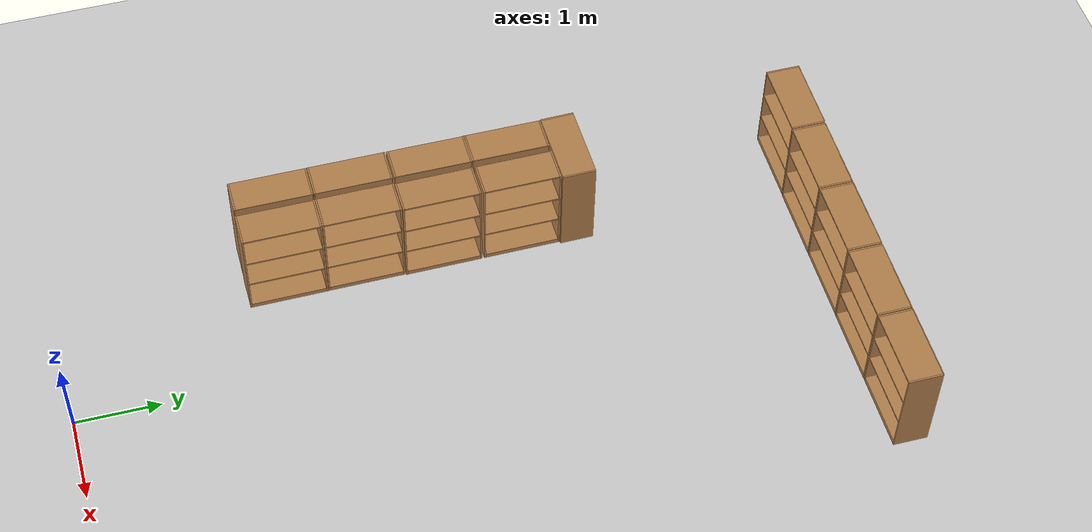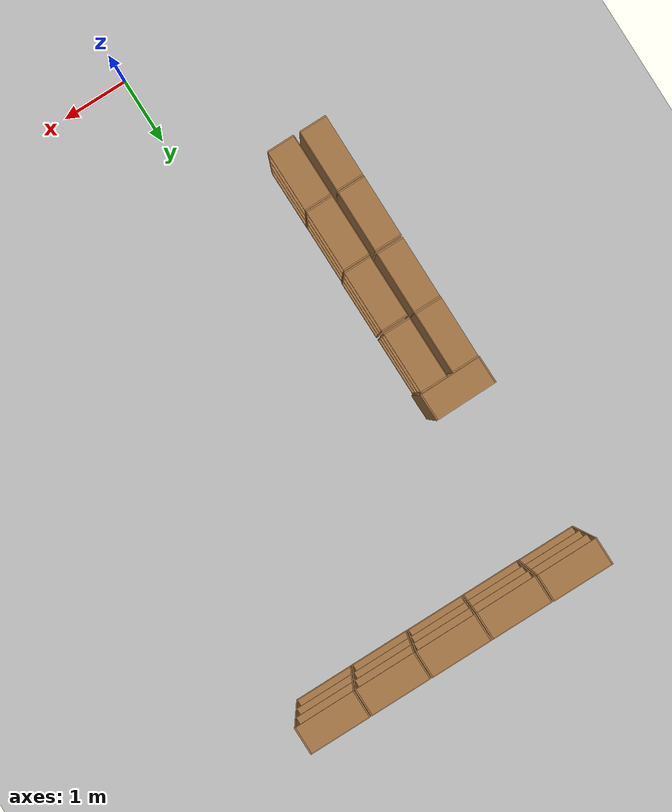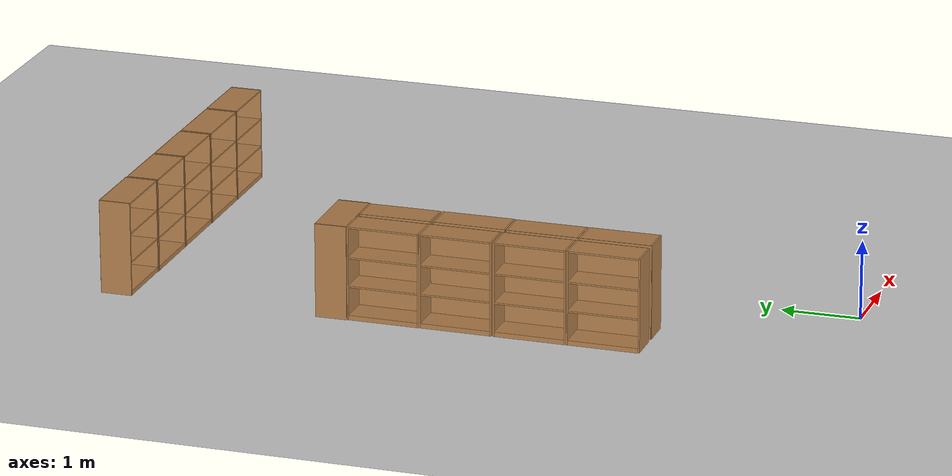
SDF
<sdf version="1.7">
 <world name="default">
  <model name="ground_plane">
   <static>1</static>
   <link name="link">
    <collision name="collision">
     <geometry><plane><normal>0 0 1</normal><size>100 100</size></plane></geometry>
     <surface><friction><ode><mu>100</mu><mu2>50</mu2></ode></friction></surface>
    </collision>
    <visual name="visual">
     <cast_shadows>0</cast_shadows>
     <geometry><plane><normal>0 0 1</normal><size>100 100</size></plane></geometry>
     <material>
      <script><uri>file://media/materials/scripts/gazebo.material</uri><name>Gazebo/Grey</name></script>
     </material>
    </visual>
   </link>
  </model>
  <model name="bookshelf_clone_clone_5">
   <static>1</static>
   <link name="link">
    <inertial><mass>1</mass></inertial>
    <collision name="back">
     <pose>0 0.005 0.6 0 -0 0</pose>
     <geometry><box><size>0.9 0.01 1.2</size></box></geometry>
    </collision>
    <visual name="visual1">
     <pose>0 0.005 0.6 0 -0 0</pose>
     <geometry><box><size>0.9 0.01 1.2</size></box></geometry>
     <material>
      <script><uri>file://media/materials/scripts/gazebo.material</uri><name>Gazebo/Wood</name></script>
     </material>
    </visual>
    <collision name="left_side">
     <pose>0.45 -0.195 0.6 0 -0 0</pose>
     <geometry><box><size>0.02 0.4 1.2</size></box></geometry>
    </collision>
    <visual name="visual2">
     <pose>0.45 -0.195 0.6 0 -0 0</pose>
     <geometry><box><size>0.02 0.4 1.2</size></box></geometry>
     <material>
      <script><uri>file://media/materials/scripts/gazebo.material</uri><name>Gazebo/Wood</name></script>
     </material>
    </visual>
    <collision name="right_side">
     <pose>-0.45 -0.195 0.6 0 -0 0</pose>
     <geometry><box><size>0.02 0.4 1.2</size></box></geometry>
    </collision>
    <visual name="visual3">
     <pose>-0.45 -0.195 0.6 0 -0 0</pose>
     <geometry><box><size>0.02 0.4 1.2</size></box></geometry>
     <material>
      <script><uri>file://media/materials/scripts/gazebo.material</uri><name>Gazebo/Wood</name></script>
     </material>
    </visual>
    <collision name="bottom">
     <pose>0 -0.195 0.03 0 -0 0</pose>
     <geometry><box><size>0.88 0.4 0.06</size></box></geometry>
    </collision>
    <visual name="visual4">
     <pose>0 -0.195 0.03 0 -0 0</pose>
     <geometry><box><size>0.88 0.4 0.06</size></box></geometry>
     <material>
      <script><uri>file://media/materials/scripts/gazebo.material</uri><name>Gazebo/Wood</name></script>
     </material>
    </visual>
    <collision name="top">
     <pose>0 -0.195 1.19 0 -0 0</pose>
     <geometry><box><size>0.88 0.4 0.02</size></box></geometry>
    </collision>
    <visual name="visual5">
     <pose>0 -0.195 1.19 0 -0 0</pose>
     <geometry><box><size>0.88 0.4 0.02</size></box></geometry>
     <material>
      <script><uri>file://media/materials/scripts/gazebo.material</uri><name>Gazebo/Wood</name></script>
     </material>
    </visual>
    <collision name="low_shelf">
     <pose>0 -0.195 0.43 0 -0 0</pose>
     <geometry><box><size>0.88 0.4 0.02</size></box></geometry>
    </collision>
    <visual name="visual6">
     <pose>0 -0.195 0.43 0 -0 0</pose>
     <geometry><box><size>0.88 0.4 0.02</size></box></geometry>
     <material>
      <script><uri>file://media/materials/scripts/gazebo.material</uri><name>Gazebo/Wood</name></script>
     </material>
    </visual>
    <collision name="high_shelf">
     <pose>0 -0.195 0.8 0 -0 0</pose>
     <geometry><box><size>0.88 0.4 0.02</size></box></geometry>
    </collision>
    <visual name="visual7">
     <pose>0 -0.195 0.8 0 -0 0</pose>
     <geometry><box><size>0.88 0.4 0.02</size></box></geometry>
     <material>
      <script><uri>file://media/materials/scripts/gazebo.material</uri><name>Gazebo/Wood</name></script>
     </material>
    </visual>
   </link>
   <pose>-1.53341 9.11755 0 0 -0 0</pose>
  </model>
  <model name="bookshelf_clone_clone_6">
   <static>1</static>
   <link name="link">
    <inertial><mass>1</mass></inertial>
    <collision name="back">
     <pose>0 0.005 0.6 0 -0 0</pose>
     <geometry><box><size>0.9 0.01 1.2</size></box></geometry>
    </collision>
    <visual name="visual1">
     <pose>0 0.005 0.6 0 -0 0</pose>
     <geometry><box><size>0.9 0.01 1.2</size></box></geometry>
     <material>
      <script><uri>file://media/materials/scripts/gazebo.material</uri><name>Gazebo/Wood</name></script>
     </material>
    </visual>
    <collision name="left_side">
     <pose>0.45 -0.195 0.6 0 -0 0</pose>
     <geometry><box><size>0.02 0.4 1.2</size></box></geometry>
    </collision>
    <visual name="visual2">
     <pose>0.45 -0.195 0.6 0 -0 0</pose>
     <geometry><box><size>0.02 0.4 1.2</size></box></geometry>
     <material>
      <script><uri>file://media/materials/scripts/gazebo.material</uri><name>Gazebo/Wood</name></script>
     </material>
    </visual>
    <collision name="right_side">
     <pose>-0.45 -0.195 0.6 0 -0 0</pose>
     <geometry><box><size>0.02 0.4 1.2</size></box></geometry>
    </collision>
    <visual name="visual3">
     <pose>-0.45 -0.195 0.6 0 -0 0</pose>
     <geometry><box><size>0.02 0.4 1.2</size></box></geometry>
     <material>
      <script><uri>file://media/materials/scripts/gazebo.material</uri><name>Gazebo/Wood</name></script>
     </material>
    </visual>
    <collision name="bottom">
     <pose>0 -0.195 0.03 0 -0 0</pose>
     <geometry><box><size>0.88 0.4 0.06</size></box></geometry>
    </collision>
    <visual name="visual4">
     <pose>0 -0.195 0.03 0 -0 0</pose>
     <geometry><box><size>0.88 0.4 0.06</size></box></geometry>
     <material>
      <script><uri>file://media/materials/scripts/gazebo.material</uri><name>Gazebo/Wood</name></script>
     </material>
    </visual>
    <collision name="top">
     <pose>0 -0.195 1.19 0 -0 0</pose>
     <geometry><box><size>0.88 0.4 0.02</size></box></geometry>
    </collision>
    <visual name="visual5">
     <pose>0 -0.195 1.19 0 -0 0</pose>
     <geometry><box><size>0.88 0.4 0.02</size></box></geometry>
     <material>
      <script><uri>file://media/materials/scripts/gazebo.material</uri><name>Gazebo/Wood</name></script>
     </material>
    </visual>
    <collision name="low_shelf">
     <pose>0 -0.195 0.43 0 -0 0</pose>
     <geometry><box><size>0.88 0.4 0.02</size></box></geometry>
    </collision>
    <visual name="visual6">
     <pose>0 -0.195 0.43 0 -0 0</pose>
     <geometry><box><size>0.88 0.4 0.02</size></box></geometry>
     <material>
      <script><uri>file://media/materials/scripts/gazebo.material</uri><name>Gazebo/Wood</name></script>
     </material>
    </visual>
    <collision name="high_shelf">
     <pose>0 -0.195 0.8 0 -0 0</pose>
     <geometry><box><size>0.88 0.4 0.02</size></box></geometry>
    </collision>
    <visual name="visual7">
     <pose>0 -0.195 0.8 0 -0 0</pose>
     <geometry><box><size>0.88 0.4 0.02</size></box></geometry>
     <material>
      <script><uri>file://media/materials/scripts/gazebo.material</uri><name>Gazebo/Wood</name></script>
     </material>
    </visual>
   </link>
   <pose>-0.606232 9.11229 0 0 -0 0</pose>
  </model>
  <model name="bookshelf_clone_clone_7">
   <static>1</static>
   <link name="link">
    <inertial><mass>1</mass></inertial>
    <collision name="back">
     <pose>0 0.005 0.6 0 -0 0</pose>
     <geometry><box><size>0.9 0.01 1.2</size></box></geometry>
    </collision>
    <visual name="visual1">
     <pose>0 0.005 0.6 0 -0 0</pose>
     <geometry><box><size>0.9 0.01 1.2</size></box></geometry>
     <material>
      <script><uri>file://media/materials/scripts/gazebo.material</uri><name>Gazebo/Wood</name></script>
     </material>
    </visual>
    <collision name="left_side">
     <pose>0.45 -0.195 0.6 0 -0 0</pose>
     <geometry><box><size>0.02 0.4 1.2</size></box></geometry>
    </collision>
    <visual name="visual2">
     <pose>0.45 -0.195 0.6 0 -0 0</pose>
     <geometry><box><size>0.02 0.4 1.2</size></box></geometry>
     <material>
      <script><uri>file://media/materials/scripts/gazebo.material</uri><name>Gazebo/Wood</name></script>
     </material>
    </visual>
    <collision name="right_side">
     <pose>-0.45 -0.195 0.6 0 -0 0</pose>
     <geometry><box><size>0.02 0.4 1.2</size></box></geometry>
    </collision>
    <visual name="visual3">
     <pose>-0.45 -0.195 0.6 0 -0 0</pose>
     <geometry><box><size>0.02 0.4 1.2</size></box></geometry>
     <material>
      <script><uri>file://media/materials/scripts/gazebo.material</uri><name>Gazebo/Wood</name></script>
     </material>
    </visual>
    <collision name="bottom">
     <pose>0 -0.195 0.03 0 -0 0</pose>
     <geometry><box><size>0.88 0.4 0.06</size></box></geometry>
    </collision>
    <visual name="visual4">
     <pose>0 -0.195 0.03 0 -0 0</pose>
     <geometry><box><size>0.88 0.4 0.06</size></box></geometry>
     <material>
      <script><uri>file://media/materials/scripts/gazebo.material</uri><name>Gazebo/Wood</name></script>
     </material>
    </visual>
    <collision name="top">
     <pose>0 -0.195 1.19 0 -0 0</pose>
     <geometry><box><size>0.88 0.4 0.02</size></box></geometry>
    </collision>
    <visual name="visual5">
     <pose>0 -0.195 1.19 0 -0 0</pose>
     <geometry><box><size>0.88 0.4 0.02</size></box></geometry>
     <material>
      <script><uri>file://media/materials/scripts/gazebo.material</uri><name>Gazebo/Wood</name></script>
     </material>
    </visual>
    <collision name="low_shelf">
     <pose>0 -0.195 0.43 0 -0 0</pose>
     <geometry><box><size>0.88 0.4 0.02</size></box></geometry>
    </collision>
    <visual name="visual6">
     <pose>0 -0.195 0.43 0 -0 0</pose>
     <geometry><box><size>0.88 0.4 0.02</size></box></geometry>
     <material>
      <script><uri>file://media/materials/scripts/gazebo.material</uri><name>Gazebo/Wood</name></script>
     </material>
    </visual>
    <collision name="high_shelf">
     <pose>0 -0.195 0.8 0 -0 0</pose>
     <geometry><box><size>0.88 0.4 0.02</size></box></geometry>
    </collision>
    <visual name="visual7">
     <pose>0 -0.195 0.8 0 -0 0</pose>
     <geometry><box><size>0.88 0.4 0.02</size></box></geometry>
     <material>
      <script><uri>file://media/materials/scripts/gazebo.material</uri><name>Gazebo/Wood</name></script>
     </material>
    </visual>
   </link>
   <pose>0.320661 9.11239 0 0 -0 0</pose>
  </model>
  <model name="bookshelf_clone_clone_8">
   <static>1</static>
   <link name="link">
    <inertial><mass>1</mass></inertial>
    <collision name="back">
     <pose>0 0.005 0.6 0 -0 0</pose>
     <geometry><box><size>0.9 0.01 1.2</size></box></geometry>
    </collision>
    <visual name="visual1">
     <pose>0 0.005 0.6 0 -0 0</pose>
     <geometry><box><size>0.9 0.01 1.2</size></box></geometry>
     <material>
      <script><uri>file://media/materials/scripts/gazebo.material</uri><name>Gazebo/Wood</name></script>
     </material>
    </visual>
    <collision name="left_side">
     <pose>0.45 -0.195 0.6 0 -0 0</pose>
     <geometry><box><size>0.02 0.4 1.2</size></box></geometry>
    </collision>
    <visual name="visual2">
     <pose>0.45 -0.195 0.6 0 -0 0</pose>
     <geometry><box><size>0.02 0.4 1.2</size></box></geometry>
     <material>
      <script><uri>file://media/materials/scripts/gazebo.material</uri><name>Gazebo/Wood</name></script>
     </material>
    </visual>
    <collision name="right_side">
     <pose>-0.45 -0.195 0.6 0 -0 0</pose>
     <geometry><box><size>0.02 0.4 1.2</size></box></geometry>
    </collision>
    <visual name="visual3">
     <pose>-0.45 -0.195 0.6 0 -0 0</pose>
     <geometry><box><size>0.02 0.4 1.2</size></box></geometry>
     <material>
      <script><uri>file://media/materials/scripts/gazebo.material</uri><name>Gazebo/Wood</name></script>
     </material>
    </visual>
    <collision name="bottom">
     <pose>0 -0.195 0.03 0 -0 0</pose>
     <geometry><box><size>0.88 0.4 0.06</size></box></geometry>
    </collision>
    <visual name="visual4">
     <pose>0 -0.195 0.03 0 -0 0</pose>
     <geometry><box><size>0.88 0.4 0.06</size></box></geometry>
     <material>
      <script><uri>file://media/materials/scripts/gazebo.material</uri><name>Gazebo/Wood</name></script>
     </material>
    </visual>
    <collision name="top">
     <pose>0 -0.195 1.19 0 -0 0</pose>
     <geometry><box><size>0.88 0.4 0.02</size></box></geometry>
    </collision>
    <visual name="visual5">
     <pose>0 -0.195 1.19 0 -0 0</pose>
     <geometry><box><size>0.88 0.4 0.02</size></box></geometry>
     <material>
      <script><uri>file://media/materials/scripts/gazebo.material</uri><name>Gazebo/Wood</name></script>
     </material>
    </visual>
    <collision name="low_shelf">
     <pose>0 -0.195 0.43 0 -0 0</pose>
     <geometry><box><size>0.88 0.4 0.02</size></box></geometry>
    </collision>
    <visual name="visual6">
     <pose>0 -0.195 0.43 0 -0 0</pose>
     <geometry><box><size>0.88 0.4 0.02</size></box></geometry>
     <material>
      <script><uri>file://media/materials/scripts/gazebo.material</uri><name>Gazebo/Wood</name></script>
     </material>
    </visual>
    <collision name="high_shelf">
     <pose>0 -0.195 0.8 0 -0 0</pose>
     <geometry><box><size>0.88 0.4 0.02</size></box></geometry>
    </collision>
    <visual name="visual7">
     <pose>0 -0.195 0.8 0 -0 0</pose>
     <geometry><box><size>0.88 0.4 0.02</size></box></geometry>
     <material>
      <script><uri>file://media/materials/scripts/gazebo.material</uri><name>Gazebo/Wood</name></script>
     </material>
    </visual>
   </link>
   <pose>1.24822 9.10984 0 0 -0 0</pose>
  </model>
  <model name="bookshelf_clone_clone_9">
   <static>1</static>
   <link name="link">
    <inertial><mass>1</mass></inertial>
    <collision name="back">
     <pose>0 0.005 0.6 0 -0 0</pose>
     <geometry><box><size>0.9 0.01 1.2</size></box></geometry>
    </collision>
    <visual name="visual1">
     <pose>0 0.005 0.6 0 -0 0</pose>
     <geometry><box><size>0.9 0.01 1.2</size></box></geometry>
     <material>
      <script><uri>file://media/materials/scripts/gazebo.material</uri><name>Gazebo/Wood</name></script>
     </material>
    </visual>
    <collision name="left_side">
     <pose>0.45 -0.195 0.6 0 -0 0</pose>
     <geometry><box><size>0.02 0.4 1.2</size></box></geometry>
    </collision>
    <visual name="visual2">
     <pose>0.45 -0.195 0.6 0 -0 0</pose>
     <geometry><box><size>0.02 0.4 1.2</size></box></geometry>
     <material>
      <script><uri>file://media/materials/scripts/gazebo.material</uri><name>Gazebo/Wood</name></script>
     </material>
    </visual>
    <collision name="right_side">
     <pose>-0.45 -0.195 0.6 0 -0 0</pose>
     <geometry><box><size>0.02 0.4 1.2</size></box></geometry>
    </collision>
    <visual name="visual3">
     <pose>-0.45 -0.195 0.6 0 -0 0</pose>
     <geometry><box><size>0.02 0.4 1.2</size></box></geometry>
     <material>
      <script><uri>file://media/materials/scripts/gazebo.material</uri><name>Gazebo/Wood</name></script>
     </material>
    </visual>
    <collision name="bottom">
     <pose>0 -0.195 0.03 0 -0 0</pose>
     <geometry><box><size>0.88 0.4 0.06</size></box></geometry>
    </collision>
    <visual name="visual4">
     <pose>0 -0.195 0.03 0 -0 0</pose>
     <geometry><box><size>0.88 0.4 0.06</size></box></geometry>
     <material>
      <script><uri>file://media/materials/scripts/gazebo.material</uri><name>Gazebo/Wood</name></script>
     </material>
    </visual>
    <collision name="top">
     <pose>0 -0.195 1.19 0 -0 0</pose>
     <geometry><box><size>0.88 0.4 0.02</size></box></geometry>
    </collision>
    <visual name="visual5">
     <pose>0 -0.195 1.19 0 -0 0</pose>
     <geometry><box><size>0.88 0.4 0.02</size></box></geometry>
     <material>
      <script><uri>file://media/materials/scripts/gazebo.material</uri><name>Gazebo/Wood</name></script>
     </material>
    </visual>
    <collision name="low_shelf">
     <pose>0 -0.195 0.43 0 -0 0</pose>
     <geometry><box><size>0.88 0.4 0.02</size></box></geometry>
    </collision>
    <visual name="visual6">
     <pose>0 -0.195 0.43 0 -0 0</pose>
     <geometry><box><size>0.88 0.4 0.02</size></box></geometry>
     <material>
      <script><uri>file://media/materials/scripts/gazebo.material</uri><name>Gazebo/Wood</name></script>
     </material>
    </visual>
    <collision name="high_shelf">
     <pose>0 -0.195 0.8 0 -0 0</pose>
     <geometry><box><size>0.88 0.4 0.02</size></box></geometry>
    </collision>
    <visual name="visual7">
     <pose>0 -0.195 0.8 0 -0 0</pose>
     <geometry><box><size>0.88 0.4 0.02</size></box></geometry>
     <material>
      <script><uri>file://media/materials/scripts/gazebo.material</uri><name>Gazebo/Wood</name></script>
     </material>
    </visual>
   </link>
   <pose>2.17586 9.11063 0 0 -0 0</pose>
  </model>
  <model name="bookshelf_clone_1_clone_clone_6_clone">
   <static>1</static>
   <link name="link">
    <inertial><mass>1</mass></inertial>
    <collision name="back">
     <pose>0 0.005 0.6 0 -0 0</pose>
     <geometry><box><size>0.9 0.01 1.2</size></box></geometry>
    </collision>
    <visual name="visual1">
     <pose>0 0.005 0.6 0 -0 0</pose>
     <geometry><box><size>0.9 0.01 1.2</size></box></geometry>
     <material>
      <script><uri>file://media/materials/scripts/gazebo.material</uri><name>Gazebo/Wood</name></script>
     </material>
    </visual>
    <collision name="left_side">
     <pose>0.45 -0.195 0.6 0 -0 0</pose>
     <geometry><box><size>0.02 0.4 1.2</size></box></geometry>
    </collision>
    <visual name="visual2">
     <pose>0.45 -0.195 0.6 0 -0 0</pose>
     <geometry><box><size>0.02 0.4 1.2</size></box></geometry>
     <material>
      <script><uri>file://media/materials/scripts/gazebo.material</uri><name>Gazebo/Wood</name></script>
     </material>
    </visual>
    <collision name="right_side">
     <pose>-0.45 -0.195 0.6 0 -0 0</pose>
     <geometry><box><size>0.02 0.4 1.2</size></box></geometry>
    </collision>
    <visual name="visual3">
     <pose>-0.45 -0.195 0.6 0 -0 0</pose>
     <geometry><box><size>0.02 0.4 1.2</size></box></geometry>
     <material>
      <script><uri>file://media/materials/scripts/gazebo.material</uri><name>Gazebo/Wood</name></script>
     </material>
    </visual>
    <collision name="bottom">
     <pose>0 -0.195 0.03 0 -0 0</pose>
     <geometry><box><size>0.88 0.4 0.06</size></box></geometry>
    </collision>
    <visual name="visual4">
     <pose>0 -0.195 0.03 0 -0 0</pose>
     <geometry><box><size>0.88 0.4 0.06</size></box></geometry>
     <material>
      <script><uri>file://media/materials/scripts/gazebo.material</uri><name>Gazebo/Wood</name></script>
     </material>
    </visual>
    <collision name="top">
     <pose>0 -0.195 1.19 0 -0 0</pose>
     <geometry><box><size>0.88 0.4 0.02</size></box></geometry>
    </collision>
    <visual name="visual5">
     <pose>0 -0.195 1.19 0 -0 0</pose>
     <geometry><box><size>0.88 0.4 0.02</size></box></geometry>
     <material>
      <script><uri>file://media/materials/scripts/gazebo.material</uri><name>Gazebo/Wood</name></script>
     </material>
    </visual>
    <collision name="low_shelf">
     <pose>0 -0.195 0.43 0 -0 0</pose>
     <geometry><box><size>0.88 0.4 0.02</size></box></geometry>
    </collision>
    <visual name="visual6">
     <pose>0 -0.195 0.43 0 -0 0</pose>
     <geometry><box><size>0.88 0.4 0.02</size></box></geometry>
     <material>
      <script><uri>file://media/materials/scripts/gazebo.material</uri><name>Gazebo/Wood</name></script>
     </material>
    </visual>
    <collision name="high_shelf">
     <pose>0 -0.195 0.8 0 -0 0</pose>
     <geometry><box><size>0.88 0.4 0.02</size></box></geometry>
    </collision>
    <visual name="visual7">
     <pose>0 -0.195 0.8 0 -0 0</pose>
     <geometry><box><size>0.88 0.4 0.02</size></box></geometry>
     <material>
      <script><uri>file://media/materials/scripts/gazebo.material</uri><name>Gazebo/Wood</name></script>
     </material>
    </visual>
   </link>
   <pose>-1.50903 5.94094 0 0 0 -3.12822</pose>
  </model>
  <model name="bookshelf_clone_2_clone_11">
   <static>1</static>
   <link name="link">
    <inertial><mass>1</mass></inertial>
    <collision name="back">
     <pose>0 0.005 0.6 0 -0 0</pose>
     <geometry><box><size>0.9 0.01 1.2</size></box></geometry>
    </collision>
    <visual name="visual1">
     <pose>0 0.005 0.6 0 -0 0</pose>
     <geometry><box><size>0.9 0.01 1.2</size></box></geometry>
     <material>
      <script><uri>file://media/materials/scripts/gazebo.material</uri><name>Gazebo/Wood</name></script>
     </material>
    </visual>
    <collision name="left_side">
     <pose>0.45 -0.195 0.6 0 -0 0</pose>
     <geometry><box><size>0.02 0.4 1.2</size></box></geometry>
    </collision>
    <visual name="visual2">
     <pose>0.45 -0.195 0.6 0 -0 0</pose>
     <geometry><box><size>0.02 0.4 1.2</size></box></geometry>
     <material>
      <script><uri>file://media/materials/scripts/gazebo.material</uri><name>Gazebo/Wood</name></script>
     </material>
    </visual>
    <collision name="right_side">
     <pose>-0.45 -0.195 0.6 0 -0 0</pose>
     <geometry><box><size>0.02 0.4 1.2</size></box></geometry>
    </collision>
    <visual name="visual3">
     <pose>-0.45 -0.195 0.6 0 -0 0</pose>
     <geometry><box><size>0.02 0.4 1.2</size></box></geometry>
     <material>
      <script><uri>file://media/materials/scripts/gazebo.material</uri><name>Gazebo/Wood</name></script>
     </material>
    </visual>
    <collision name="bottom">
     <pose>0 -0.195 0.03 0 -0 0</pose>
     <geometry><box><size>0.88 0.4 0.06</size></box></geometry>
    </collision>
    <visual name="visual4">
     <pose>0 -0.195 0.03 0 -0 0</pose>
     <geometry><box><size>0.88 0.4 0.06</size></box></geometry>
     <material>
      <script><uri>file://media/materials/scripts/gazebo.material</uri><name>Gazebo/Wood</name></script>
     </material>
    </visual>
    <collision name="top">
     <pose>0 -0.195 1.19 0 -0 0</pose>
     <geometry><box><size>0.88 0.4 0.02</size></box></geometry>
    </collision>
    <visual name="visual5">
     <pose>0 -0.195 1.19 0 -0 0</pose>
     <geometry><box><size>0.88 0.4 0.02</size></box></geometry>
     <material>
      <script><uri>file://media/materials/scripts/gazebo.material</uri><name>Gazebo/Wood</name></script>
     </material>
    </visual>
    <collision name="low_shelf">
     <pose>0 -0.195 0.43 0 -0 0</pose>
     <geometry><box><size>0.88 0.4 0.02</size></box></geometry>
    </collision>
    <visual name="visual6">
     <pose>0 -0.195 0.43 0 -0 0</pose>
     <geometry><box><size>0.88 0.4 0.02</size></box></geometry>
     <material>
      <script><uri>file://media/materials/scripts/gazebo.material</uri><name>Gazebo/Wood</name></script>
     </material>
    </visual>
    <collision name="high_shelf">
     <pose>0 -0.195 0.8 0 -0 0</pose>
     <geometry><box><size>0.88 0.4 0.02</size></box></geometry>
    </collision>
    <visual name="visual7">
     <pose>0 -0.195 0.8 0 -0 0</pose>
     <geometry><box><size>0.88 0.4 0.02</size></box></geometry>
     <material>
      <script><uri>file://media/materials/scripts/gazebo.material</uri><name>Gazebo/Wood</name></script>
     </material>
    </visual>
   </link>
   <pose>-1.55871 2.68408 0 0 0 -1.57136</pose>
  </model>
  <model name="bookshelf_clone_2_clone_12">
   <static>1</static>
   <link name="link">
    <inertial><mass>1</mass></inertial>
    <collision name="back">
     <pose>0 0.005 0.6 0 -0 0</pose>
     <geometry><box><size>0.9 0.01 1.2</size></box></geometry>
    </collision>
    <visual name="visual1">
     <pose>0 0.005 0.6 0 -0 0</pose>
     <geometry><box><size>0.9 0.01 1.2</size></box></geometry>
     <material>
      <script><uri>file://media/materials/scripts/gazebo.material</uri><name>Gazebo/Wood</name></script>
     </material>
    </visual>
    <collision name="left_side">
     <pose>0.45 -0.195 0.6 0 -0 0</pose>
     <geometry><box><size>0.02 0.4 1.2</size></box></geometry>
    </collision>
    <visual name="visual2">
     <pose>0.45 -0.195 0.6 0 -0 0</pose>
     <geometry><box><size>0.02 0.4 1.2</size></box></geometry>
     <material>
      <script><uri>file://media/materials/scripts/gazebo.material</uri><name>Gazebo/Wood</name></script>
     </material>
    </visual>
    <collision name="right_side">
     <pose>-0.45 -0.195 0.6 0 -0 0</pose>
     <geometry><box><size>0.02 0.4 1.2</size></box></geometry>
    </collision>
    <visual name="visual3">
     <pose>-0.45 -0.195 0.6 0 -0 0</pose>
     <geometry><box><size>0.02 0.4 1.2</size></box></geometry>
     <material>
      <script><uri>file://media/materials/scripts/gazebo.material</uri><name>Gazebo/Wood</name></script>
     </material>
    </visual>
    <collision name="bottom">
     <pose>0 -0.195 0.03 0 -0 0</pose>
     <geometry><box><size>0.88 0.4 0.06</size></box></geometry>
    </collision>
    <visual name="visual4">
     <pose>0 -0.195 0.03 0 -0 0</pose>
     <geometry><box><size>0.88 0.4 0.06</size></box></geometry>
     <material>
      <script><uri>file://media/materials/scripts/gazebo.material</uri><name>Gazebo/Wood</name></script>
     </material>
    </visual>
    <collision name="top">
     <pose>0 -0.195 1.19 0 -0 0</pose>
     <geometry><box><size>0.88 0.4 0.02</size></box></geometry>
    </collision>
    <visual name="visual5">
     <pose>0 -0.195 1.19 0 -0 0</pose>
     <geometry><box><size>0.88 0.4 0.02</size></box></geometry>
     <material>
      <script><uri>file://media/materials/scripts/gazebo.material</uri><name>Gazebo/Wood</name></script>
     </material>
    </visual>
    <collision name="low_shelf">
     <pose>0 -0.195 0.43 0 -0 0</pose>
     <geometry><box><size>0.88 0.4 0.02</size></box></geometry>
    </collision>
    <visual name="visual6">
     <pose>0 -0.195 0.43 0 -0 0</pose>
     <geometry><box><size>0.88 0.4 0.02</size></box></geometry>
     <material>
      <script><uri>file://media/materials/scripts/gazebo.material</uri><name>Gazebo/Wood</name></script>
     </material>
    </visual>
    <collision name="high_shelf">
     <pose>0 -0.195 0.8 0 -0 0</pose>
     <geometry><box><size>0.88 0.4 0.02</size></box></geometry>
    </collision>
    <visual name="visual7">
     <pose>0 -0.195 0.8 0 -0 0</pose>
     <geometry><box><size>0.88 0.4 0.02</size></box></geometry>
     <material>
      <script><uri>file://media/materials/scripts/gazebo.material</uri><name>Gazebo/Wood</name></script>
     </material>
    </visual>
   </link>
   <pose>-1.55963 3.60953 0 0 0 -1.57136</pose>
  </model>
  <model name="bookshelf_clone_2_clone_13">
   <static>1</static>
   <link name="link">
    <inertial><mass>1</mass></inertial>
    <collision name="back">
     <pose>0 0.005 0.6 0 -0 0</pose>
     <geometry><box><size>0.9 0.01 1.2</size></box></geometry>
    </collision>
    <visual name="visual1">
     <pose>0 0.005 0.6 0 -0 0</pose>
     <geometry><box><size>0.9 0.01 1.2</size></box></geometry>
     <material>
      <script><uri>file://media/materials/scripts/gazebo.material</uri><name>Gazebo/Wood</name></script>
     </material>
    </visual>
    <collision name="left_side">
     <pose>0.45 -0.195 0.6 0 -0 0</pose>
     <geometry><box><size>0.02 0.4 1.2</size></box></geometry>
    </collision>
    <visual name="visual2">
     <pose>0.45 -0.195 0.6 0 -0 0</pose>
     <geometry><box><size>0.02 0.4 1.2</size></box></geometry>
     <material>
      <script><uri>file://media/materials/scripts/gazebo.material</uri><name>Gazebo/Wood</name></script>
     </material>
    </visual>
    <collision name="right_side">
     <pose>-0.45 -0.195 0.6 0 -0 0</pose>
     <geometry><box><size>0.02 0.4 1.2</size></box></geometry>
    </collision>
    <visual name="visual3">
     <pose>-0.45 -0.195 0.6 0 -0 0</pose>
     <geometry><box><size>0.02 0.4 1.2</size></box></geometry>
     <material>
      <script><uri>file://media/materials/scripts/gazebo.material</uri><name>Gazebo/Wood</name></script>
     </material>
    </visual>
    <collision name="bottom">
     <pose>0 -0.195 0.03 0 -0 0</pose>
     <geometry><box><size>0.88 0.4 0.06</size></box></geometry>
    </collision>
    <visual name="visual4">
     <pose>0 -0.195 0.03 0 -0 0</pose>
     <geometry><box><size>0.88 0.4 0.06</size></box></geometry>
     <material>
      <script><uri>file://media/materials/scripts/gazebo.material</uri><name>Gazebo/Wood</name></script>
     </material>
    </visual>
    <collision name="top">
     <pose>0 -0.195 1.19 0 -0 0</pose>
     <geometry><box><size>0.88 0.4 0.02</size></box></geometry>
    </collision>
    <visual name="visual5">
     <pose>0 -0.195 1.19 0 -0 0</pose>
     <geometry><box><size>0.88 0.4 0.02</size></box></geometry>
     <material>
      <script><uri>file://media/materials/scripts/gazebo.material</uri><name>Gazebo/Wood</name></script>
     </material>
    </visual>
    <collision name="low_shelf">
     <pose>0 -0.195 0.43 0 -0 0</pose>
     <geometry><box><size>0.88 0.4 0.02</size></box></geometry>
    </collision>
    <visual name="visual6">
     <pose>0 -0.195 0.43 0 -0 0</pose>
     <geometry><box><size>0.88 0.4 0.02</size></box></geometry>
     <material>
      <script><uri>file://media/materials/scripts/gazebo.material</uri><name>Gazebo/Wood</name></script>
     </material>
    </visual>
    <collision name="high_shelf">
     <pose>0 -0.195 0.8 0 -0 0</pose>
     <geometry><box><size>0.88 0.4 0.02</size></box></geometry>
    </collision>
    <visual name="visual7">
     <pose>0 -0.195 0.8 0 -0 0</pose>
     <geometry><box><size>0.88 0.4 0.02</size></box></geometry>
     <material>
      <script><uri>file://media/materials/scripts/gazebo.material</uri><name>Gazebo/Wood</name></script>
     </material>
    </visual>
   </link>
   <pose>-1.55946 4.54746 0 0 0 -1.57136</pose>
  </model>
  <model name="bookshelf_clone_2_clone_14">
   <static>1</static>
   <link name="link">
    <inertial><mass>1</mass></inertial>
    <collision name="back">
     <pose>0 0.005 0.6 0 -0 0</pose>
     <geometry><box><size>0.9 0.01 1.2</size></box></geometry>
    </collision>
    <visual name="visual1">
     <pose>0 0.005 0.6 0 -0 0</pose>
     <geometry><box><size>0.9 0.01 1.2</size></box></geometry>
     <material>
      <script><uri>file://media/materials/scripts/gazebo.material</uri><name>Gazebo/Wood</name></script>
     </material>
    </visual>
    <collision name="left_side">
     <pose>0.45 -0.195 0.6 0 -0 0</pose>
     <geometry><box><size>0.02 0.4 1.2</size></box></geometry>
    </collision>
    <visual name="visual2">
     <pose>0.45 -0.195 0.6 0 -0 0</pose>
     <geometry><box><size>0.02 0.4 1.2</size></box></geometry>
     <material>
      <script><uri>file://media/materials/scripts/gazebo.material</uri><name>Gazebo/Wood</name></script>
     </material>
    </visual>
    <collision name="right_side">
     <pose>-0.45 -0.195 0.6 0 -0 0</pose>
     <geometry><box><size>0.02 0.4 1.2</size></box></geometry>
    </collision>
    <visual name="visual3">
     <pose>-0.45 -0.195 0.6 0 -0 0</pose>
     <geometry><box><size>0.02 0.4 1.2</size></box></geometry>
     <material>
      <script><uri>file://media/materials/scripts/gazebo.material</uri><name>Gazebo/Wood</name></script>
     </material>
    </visual>
    <collision name="bottom">
     <pose>0 -0.195 0.03 0 -0 0</pose>
     <geometry><box><size>0.88 0.4 0.06</size></box></geometry>
    </collision>
    <visual name="visual4">
     <pose>0 -0.195 0.03 0 -0 0</pose>
     <geometry><box><size>0.88 0.4 0.06</size></box></geometry>
     <material>
      <script><uri>file://media/materials/scripts/gazebo.material</uri><name>Gazebo/Wood</name></script>
     </material>
    </visual>
    <collision name="top">
     <pose>0 -0.195 1.19 0 -0 0</pose>
     <geometry><box><size>0.88 0.4 0.02</size></box></geometry>
    </collision>
    <visual name="visual5">
     <pose>0 -0.195 1.19 0 -0 0</pose>
     <geometry><box><size>0.88 0.4 0.02</size></box></geometry>
     <material>
      <script><uri>file://media/materials/scripts/gazebo.material</uri><name>Gazebo/Wood</name></script>
     </material>
    </visual>
    <collision name="low_shelf">
     <pose>0 -0.195 0.43 0 -0 0</pose>
     <geometry><box><size>0.88 0.4 0.02</size></box></geometry>
    </collision>
    <visual name="visual6">
     <pose>0 -0.195 0.43 0 -0 0</pose>
     <geometry><box><size>0.88 0.4 0.02</size></box></geometry>
     <material>
      <script><uri>file://media/materials/scripts/gazebo.material</uri><name>Gazebo/Wood</name></script>
     </material>
    </visual>
    <collision name="high_shelf">
     <pose>0 -0.195 0.8 0 -0 0</pose>
     <geometry><box><size>0.88 0.4 0.02</size></box></geometry>
    </collision>
    <visual name="visual7">
     <pose>0 -0.195 0.8 0 -0 0</pose>
     <geometry><box><size>0.88 0.4 0.02</size></box></geometry>
     <material>
      <script><uri>file://media/materials/scripts/gazebo.material</uri><name>Gazebo/Wood</name></script>
     </material>
    </visual>
   </link>
   <pose>-1.56327 5.46785 0 0 0 -1.57136</pose>
  </model>
  <model name="bookshelf_clone_2_clone_clone_0_clone_3_clone">
   <static>1</static>
   <link name="link">
    <inertial><mass>1</mass></inertial>
    <collision name="back">
     <pose>0 0.005 0.6 0 -0 0</pose>
     <geometry><box><size>0.9 0.01 1.2</size></box></geometry>
    </collision>
    <visual name="visual1">
     <pose>0 0.005 0.6 0 -0 0</pose>
     <geometry><box><size>0.9 0.01 1.2</size></box></geometry>
     <material>
      <script><uri>file://media/materials/scripts/gazebo.material</uri><name>Gazebo/Wood</name></script>
     </material>
    </visual>
    <collision name="left_side">
     <pose>0.45 -0.195 0.6 0 -0 0</pose>
     <geometry><box><size>0.02 0.4 1.2</size></box></geometry>
    </collision>
    <visual name="visual2">
     <pose>0.45 -0.195 0.6 0 -0 0</pose>
     <geometry><box><size>0.02 0.4 1.2</size></box></geometry>
     <material>
      <script><uri>file://media/materials/scripts/gazebo.material</uri><name>Gazebo/Wood</name></script>
     </material>
    </visual>
    <collision name="right_side">
     <pose>-0.45 -0.195 0.6 0 -0 0</pose>
     <geometry><box><size>0.02 0.4 1.2</size></box></geometry>
    </collision>
    <visual name="visual3">
     <pose>-0.45 -0.195 0.6 0 -0 0</pose>
     <geometry><box><size>0.02 0.4 1.2</size></box></geometry>
     <material>
      <script><uri>file://media/materials/scripts/gazebo.material</uri><name>Gazebo/Wood</name></script>
     </material>
    </visual>
    <collision name="bottom">
     <pose>0 -0.195 0.03 0 -0 0</pose>
     <geometry><box><size>0.88 0.4 0.06</size></box></geometry>
    </collision>
    <visual name="visual4">
     <pose>0 -0.195 0.03 0 -0 0</pose>
     <geometry><box><size>0.88 0.4 0.06</size></box></geometry>
     <material>
      <script><uri>file://media/materials/scripts/gazebo.material</uri><name>Gazebo/Wood</name></script>
     </material>
    </visual>
    <collision name="top">
     <pose>0 -0.195 1.19 0 -0 0</pose>
     <geometry><box><size>0.88 0.4 0.02</size></box></geometry>
    </collision>
    <visual name="visual5">
     <pose>0 -0.195 1.19 0 -0 0</pose>
     <geometry><box><size>0.88 0.4 0.02</size></box></geometry>
     <material>
      <script><uri>file://media/materials/scripts/gazebo.material</uri><name>Gazebo/Wood</name></script>
     </material>
    </visual>
    <collision name="low_shelf">
     <pose>0 -0.195 0.43 0 -0 0</pose>
     <geometry><box><size>0.88 0.4 0.02</size></box></geometry>
    </collision>
    <visual name="visual6">
     <pose>0 -0.195 0.43 0 -0 0</pose>
     <geometry><box><size>0.88 0.4 0.02</size></box></geometry>
     <material>
      <script><uri>file://media/materials/scripts/gazebo.material</uri><name>Gazebo/Wood</name></script>
     </material>
    </visual>
    <collision name="high_shelf">
     <pose>0 -0.195 0.8 0 -0 0</pose>
     <geometry><box><size>0.88 0.4 0.02</size></box></geometry>
    </collision>
    <visual name="visual7">
     <pose>0 -0.195 0.8 0 -0 0</pose>
     <geometry><box><size>0.88 0.4 0.02</size></box></geometry>
     <material>
      <script><uri>file://media/materials/scripts/gazebo.material</uri><name>Gazebo/Wood</name></script>
     </material>
    </visual>
   </link>
   <pose>-1.46847 5.47268 0 0 -0 1.57553</pose>
  </model>
  <model name="bookshelf_clone_2_clone_clone_0_clone_3_clone_clone">
   <static>1</static>
   <link name="link">
    <inertial><mass>1</mass></inertial>
    <collision name="back">
     <pose>0 0.005 0.6 0 -0 0</pose>
     <geometry><box><size>0.9 0.01 1.2</size></box></geometry>
    </collision>
    <visual name="visual1">
     <pose>0 0.005 0.6 0 -0 0</pose>
     <geometry><box><size>0.9 0.01 1.2</size></box></geometry>
     <material>
      <script><uri>file://media/materials/scripts/gazebo.material</uri><name>Gazebo/Wood</name></script>
     </material>
    </visual>
    <collision name="left_side">
     <pose>0.45 -0.195 0.6 0 -0 0</pose>
     <geometry><box><size>0.02 0.4 1.2</size></box></geometry>
    </collision>
    <visual name="visual2">
     <pose>0.45 -0.195 0.6 0 -0 0</pose>
     <geometry><box><size>0.02 0.4 1.2</size></box></geometry>
     <material>
      <script><uri>file://media/materials/scripts/gazebo.material</uri><name>Gazebo/Wood</name></script>
     </material>
    </visual>
    <collision name="right_side">
     <pose>-0.45 -0.195 0.6 0 -0 0</pose>
     <geometry><box><size>0.02 0.4 1.2</size></box></geometry>
    </collision>
    <visual name="visual3">
     <pose>-0.45 -0.195 0.6 0 -0 0</pose>
     <geometry><box><size>0.02 0.4 1.2</size></box></geometry>
     <material>
      <script><uri>file://media/materials/scripts/gazebo.material</uri><name>Gazebo/Wood</name></script>
     </material>
    </visual>
    <collision name="bottom">
     <pose>0 -0.195 0.03 0 -0 0</pose>
     <geometry><box><size>0.88 0.4 0.06</size></box></geometry>
    </collision>
    <visual name="visual4">
     <pose>0 -0.195 0.03 0 -0 0</pose>
     <geometry><box><size>0.88 0.4 0.06</size></box></geometry>
     <material>
      <script><uri>file://media/materials/scripts/gazebo.material</uri><name>Gazebo/Wood</name></script>
     </material>
    </visual>
    <collision name="top">
     <pose>0 -0.195 1.19 0 -0 0</pose>
     <geometry><box><size>0.88 0.4 0.02</size></box></geometry>
    </collision>
    <visual name="visual5">
     <pose>0 -0.195 1.19 0 -0 0</pose>
     <geometry><box><size>0.88 0.4 0.02</size></box></geometry>
     <material>
      <script><uri>file://media/materials/scripts/gazebo.material</uri><name>Gazebo/Wood</name></script>
     </material>
    </visual>
    <collision name="low_shelf">
     <pose>0 -0.195 0.43 0 -0 0</pose>
     <geometry><box><size>0.88 0.4 0.02</size></box></geometry>
    </collision>
    <visual name="visual6">
     <pose>0 -0.195 0.43 0 -0 0</pose>
     <geometry><box><size>0.88 0.4 0.02</size></box></geometry>
     <material>
      <script><uri>file://media/materials/scripts/gazebo.material</uri><name>Gazebo/Wood</name></script>
     </material>
    </visual>
    <collision name="high_shelf">
     <pose>0 -0.195 0.8 0 -0 0</pose>
     <geometry><box><size>0.88 0.4 0.02</size></box></geometry>
    </collision>
    <visual name="visual7">
     <pose>0 -0.195 0.8 0 -0 0</pose>
     <geometry><box><size>0.88 0.4 0.02</size></box></geometry>
     <material>
      <script><uri>file://media/materials/scripts/gazebo.material</uri><name>Gazebo/Wood</name></script>
     </material>
    </visual>
   </link>
   <pose>-1.46267 4.52754 0 0 -0 1.57553</pose>
  </model>
  <model name="bookshelf_clone_2_clone_clone_0_clone_3_clone_clone_0">
   <static>1</static>
   <link name="link">
    <inertial><mass>1</mass></inertial>
    <collision name="back">
     <pose>0 0.005 0.6 0 -0 0</pose>
     <geometry><box><size>0.9 0.01 1.2</size></box></geometry>
    </collision>
    <visual name="visual1">
     <pose>0 0.005 0.6 0 -0 0</pose>
     <geometry><box><size>0.9 0.01 1.2</size></box></geometry>
     <material>
      <script><uri>file://media/materials/scripts/gazebo.material</uri><name>Gazebo/Wood</name></script>
     </material>
    </visual>
    <collision name="left_side">
     <pose>0.45 -0.195 0.6 0 -0 0</pose>
     <geometry><box><size>0.02 0.4 1.2</size></box></geometry>
    </collision>
    <visual name="visual2">
     <pose>0.45 -0.195 0.6 0 -0 0</pose>
     <geometry><box><size>0.02 0.4 1.2</size></box></geometry>
     <material>
      <script><uri>file://media/materials/scripts/gazebo.material</uri><name>Gazebo/Wood</name></script>
     </material>
    </visual>
    <collision name="right_side">
     <pose>-0.45 -0.195 0.6 0 -0 0</pose>
     <geometry><box><size>0.02 0.4 1.2</size></box></geometry>
    </collision>
    <visual name="visual3">
     <pose>-0.45 -0.195 0.6 0 -0 0</pose>
     <geometry><box><size>0.02 0.4 1.2</size></box></geometry>
     <material>
      <script><uri>file://media/materials/scripts/gazebo.material</uri><name>Gazebo/Wood</name></script>
     </material>
    </visual>
    <collision name="bottom">
     <pose>0 -0.195 0.03 0 -0 0</pose>
     <geometry><box><size>0.88 0.4 0.06</size></box></geometry>
    </collision>
    <visual name="visual4">
     <pose>0 -0.195 0.03 0 -0 0</pose>
     <geometry><box><size>0.88 0.4 0.06</size></box></geometry>
     <material>
      <script><uri>file://media/materials/scripts/gazebo.material</uri><name>Gazebo/Wood</name></script>
     </material>
    </visual>
    <collision name="top">
     <pose>0 -0.195 1.19 0 -0 0</pose>
     <geometry><box><size>0.88 0.4 0.02</size></box></geometry>
    </collision>
    <visual name="visual5">
     <pose>0 -0.195 1.19 0 -0 0</pose>
     <geometry><box><size>0.88 0.4 0.02</size></box></geometry>
     <material>
      <script><uri>file://media/materials/scripts/gazebo.material</uri><name>Gazebo/Wood</name></script>
     </material>
    </visual>
    <collision name="low_shelf">
     <pose>0 -0.195 0.43 0 -0 0</pose>
     <geometry><box><size>0.88 0.4 0.02</size></box></geometry>
    </collision>
    <visual name="visual6">
     <pose>0 -0.195 0.43 0 -0 0</pose>
     <geometry><box><size>0.88 0.4 0.02</size></box></geometry>
     <material>
      <script><uri>file://media/materials/scripts/gazebo.material</uri><name>Gazebo/Wood</name></script>
     </material>
    </visual>
    <collision name="high_shelf">
     <pose>0 -0.195 0.8 0 -0 0</pose>
     <geometry><box><size>0.88 0.4 0.02</size></box></geometry>
    </collision>
    <visual name="visual7">
     <pose>0 -0.195 0.8 0 -0 0</pose>
     <geometry><box><size>0.88 0.4 0.02</size></box></geometry>
     <material>
      <script><uri>file://media/materials/scripts/gazebo.material</uri><name>Gazebo/Wood</name></script>
     </material>
    </visual>
   </link>
   <pose>-1.46847 3.60129 0 0 -0 1.57553</pose>
  </model>
  <model name="bookshelf_clone_2_clone_clone_0_clone_3_clone_clone_1">
   <static>1</static>
   <link name="link">
    <inertial><mass>1</mass></inertial>
    <collision name="back">
     <pose>0 0.005 0.6 0 -0 0</pose>
     <geometry><box><size>0.9 0.01 1.2</size></box></geometry>
    </collision>
    <visual name="visual1">
     <pose>0 0.005 0.6 0 -0 0</pose>
     <geometry><box><size>0.9 0.01 1.2</size></box></geometry>
     <material>
      <script><uri>file://media/materials/scripts/gazebo.material</uri><name>Gazebo/Wood</name></script>
     </material>
    </visual>
    <collision name="left_side">
     <pose>0.45 -0.195 0.6 0 -0 0</pose>
     <geometry><box><size>0.02 0.4 1.2</size></box></geometry>
    </collision>
    <visual name="visual2">
     <pose>0.45 -0.195 0.6 0 -0 0</pose>
     <geometry><box><size>0.02 0.4 1.2</size></box></geometry>
     <material>
      <script><uri>file://media/materials/scripts/gazebo.material</uri><name>Gazebo/Wood</name></script>
     </material>
    </visual>
    <collision name="right_side">
     <pose>-0.45 -0.195 0.6 0 -0 0</pose>
     <geometry><box><size>0.02 0.4 1.2</size></box></geometry>
    </collision>
    <visual name="visual3">
     <pose>-0.45 -0.195 0.6 0 -0 0</pose>
     <geometry><box><size>0.02 0.4 1.2</size></box></geometry>
     <material>
      <script><uri>file://media/materials/scripts/gazebo.material</uri><name>Gazebo/Wood</name></script>
     </material>
    </visual>
    <collision name="bottom">
     <pose>0 -0.195 0.03 0 -0 0</pose>
     <geometry><box><size>0.88 0.4 0.06</size></box></geometry>
    </collision>
    <visual name="visual4">
     <pose>0 -0.195 0.03 0 -0 0</pose>
     <geometry><box><size>0.88 0.4 0.06</size></box></geometry>
     <material>
      <script><uri>file://media/materials/scripts/gazebo.material</uri><name>Gazebo/Wood</name></script>
     </material>
    </visual>
    <collision name="top">
     <pose>0 -0.195 1.19 0 -0 0</pose>
     <geometry><box><size>0.88 0.4 0.02</size></box></geometry>
    </collision>
    <visual name="visual5">
     <pose>0 -0.195 1.19 0 -0 0</pose>
     <geometry><box><size>0.88 0.4 0.02</size></box></geometry>
     <material>
      <script><uri>file://media/materials/scripts/gazebo.material</uri><name>Gazebo/Wood</name></script>
     </material>
    </visual>
    <collision name="low_shelf">
     <pose>0 -0.195 0.43 0 -0 0</pose>
     <geometry><box><size>0.88 0.4 0.02</size></box></geometry>
    </collision>
    <visual name="visual6">
     <pose>0 -0.195 0.43 0 -0 0</pose>
     <geometry><box><size>0.88 0.4 0.02</size></box></geometry>
     <material>
      <script><uri>file://media/materials/scripts/gazebo.material</uri><name>Gazebo/Wood</name></script>
     </material>
    </visual>
    <collision name="high_shelf">
     <pose>0 -0.195 0.8 0 -0 0</pose>
     <geometry><box><size>0.88 0.4 0.02</size></box></geometry>
    </collision>
    <visual name="visual7">
     <pose>0 -0.195 0.8 0 -0 0</pose>
     <geometry><box><size>0.88 0.4 0.02</size></box></geometry>
     <material>
      <script><uri>file://media/materials/scripts/gazebo.material</uri><name>Gazebo/Wood</name></script>
     </material>
    </visual>
   </link>
   <pose>-1.4617 2.67793 0 0 -0 1.57553</pose>
  </model>
 </world>
</sdf>
